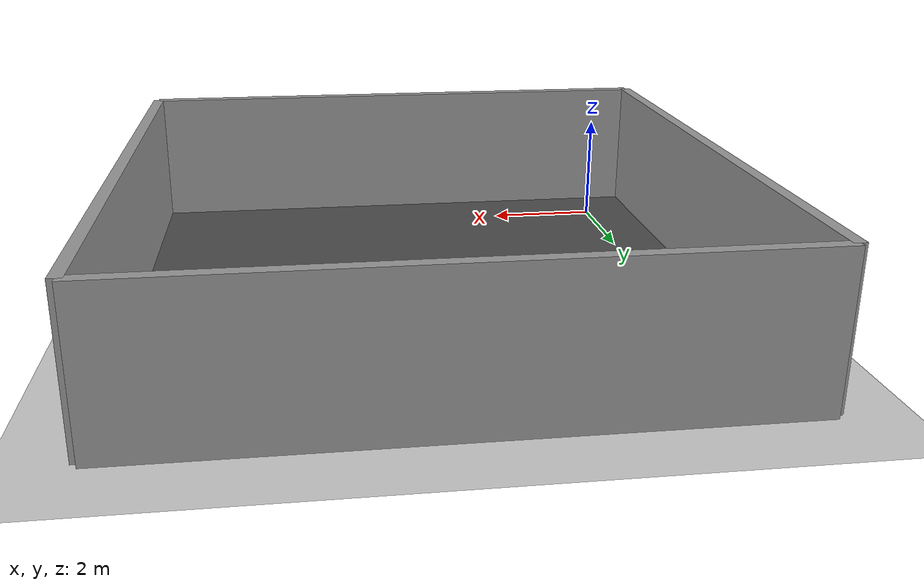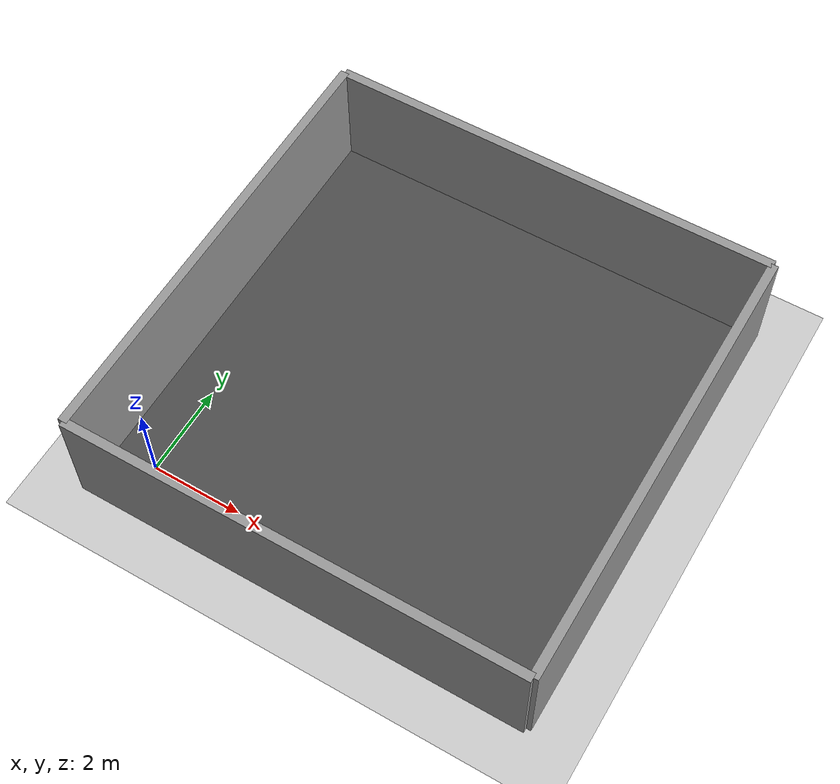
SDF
<sdf version="1.4">
 <world name="default">
  <light name="sun" type="directional">
   <pose>0 0 10 0 -0 0</pose>
   <diffuse>0.8 0.8 0.8 1</diffuse>
   <specular>0.2 0.2 0.2 1</specular>
   <attenuation>
    <range>1000</range>
    <constant>0.9</constant>
    <linear>0.01</linear>
    <quadratic>0.001</quadratic>
   </attenuation>
   <direction>-0.5 0.1 -0.9</direction>
  </light>
  <model name="ground_plane">
   <static>1</static>
   <link name="link">
    <collision name="collision">
     <geometry><plane><normal>0 0 1</normal><size>100 100</size></plane></geometry>
     <surface><friction><ode><mu>100</mu><mu2>50</mu2></ode></friction></surface>
    </collision>
    <visual name="visual">
     <cast_shadows>0</cast_shadows>
     <geometry><plane><normal>0 0 1</normal><size>100 100</size></plane></geometry>
     <material>
      <script><uri>file://media/materials/scripts/gazebo.material</uri><name>Gazebo/Grey</name></script>
     </material>
    </visual>
    <velocity_decay><linear>0</linear><angular>0</angular></velocity_decay>
   </link>
  </model>
  <physics type="ode">
   <max_step_size>0.001</max_step_size>
   <real_time_factor>1</real_time_factor>
   <real_time_update_rate>1000</real_time_update_rate>
   <gravity>0 0 -9.8</gravity>
  </physics>
  <scene><ambient>0.4 0.4 0.4 1</ambient><background>0.7 0.7 0.7 1</background><shadows>1</shadows></scene>
  <spherical_coordinates>
   <surface_model>EARTH_WGS84</surface_model>
   <latitude_deg>0</latitude_deg>
   <longitude_deg>0</longitude_deg>
   <elevation>0</elevation>
   <heading_deg>0</heading_deg>
  </spherical_coordinates>
  <model name="BuildingDefaultName">
   <pose>4 4 0 0 -0 0</pose>
   <link name="Wall_3">
    <collision name="Wall_3_Collision">
     <geometry><box><size>10 0.2 2.5</size></box></geometry>
     <pose>0 0 1.25 0 -0 0</pose>
    </collision>
    <visual name="Wall_3_Visual">
     <pose>0 0 1.25 0 -0 0</pose>
     <geometry><box><size>10 0.2 2.5</size></box></geometry>
     <material>
      <script><uri>file://media/materials/scripts/gazebo.material</uri><name>Gazebo/Grey</name></script>
     </material>
    </visual>
    <velocity_decay><linear>0</linear><angular>0</angular></velocity_decay>
    <pose>-5 0 0 0 -0 1.5708</pose>
   </link>
   <link name="Wall_5">
    <collision name="Wall_5_Collision">
     <geometry><box><size>10 0.2 2.5</size></box></geometry>
     <pose>0 0 1.25 0 -0 0</pose>
    </collision>
    <visual name="Wall_5_Visual">
     <pose>0 0 1.25 0 -0 0</pose>
     <geometry><box><size>10 0.2 2.5</size></box></geometry>
     <material>
      <script><uri>file://media/materials/scripts/gazebo.material</uri><name>Gazebo/Grey</name></script>
     </material>
    </visual>
    <velocity_decay><linear>0</linear><angular>0</angular></velocity_decay>
    <pose>5 0 0 0 -0 1.5708</pose>
   </link>
   <link name="Wall_7">
    <collision name="Wall_7_Collision">
     <geometry><box><size>10 0.2 2.5</size></box></geometry>
     <pose>0 0 1.25 0 -0 0</pose>
    </collision>
    <visual name="Wall_7_Visual">
     <pose>0 0 1.25 0 -0 0</pose>
     <geometry><box><size>10 0.2 2.5</size></box></geometry>
     <material>
      <script><uri>file://media/materials/scripts/gazebo.material</uri><name>Gazebo/Grey</name></script>
     </material>
    </visual>
    <velocity_decay><linear>0</linear><angular>0</angular></velocity_decay>
    <pose>0 -5 0 0 -0 0</pose>
   </link>
   <link name="Wall_9">
    <collision name="Wall_9_Collision">
     <geometry><box><size>10 0.2 2.5</size></box></geometry>
     <pose>0 0 1.25 0 -0 0</pose>
    </collision>
    <visual name="Wall_9_Visual">
     <pose>0 0 1.25 0 -0 0</pose>
     <geometry><box><size>10 0.2 2.5</size></box></geometry>
     <material>
      <script><uri>file://media/materials/scripts/gazebo.material</uri><name>Gazebo/Grey</name></script>
     </material>
    </visual>
    <velocity_decay><linear>0</linear><angular>0</angular></velocity_decay>
    <pose>0 5 0 0 -0 0</pose>
   </link>
   <static>1</static>
  </model>
  <model name="asphalt_plane">
   <static>1</static>
   <link name="link">
    <collision name="collision"><geometry><box><size>10 10 0.1</size></box></geometry></collision>
    <visual name="visual">
     <cast_shadows>0</cast_shadows>
     <geometry><box><size>10 10 0.1</size></box></geometry>
     <material>
      <script>
       <uri>model://asphalt_plane/materials/scripts</uri>
       <uri>model://asphalt_plane/materials/textures</uri>
       <name>vrc/asphalt</name>
      </script>
     </material>
    </visual>
    <velocity_decay><linear>0</linear><angular>0</angular></velocity_decay>
   </link>
   <pose>4 4 0 0 -0 0</pose>
  </model>
 </world>
</sdf>
